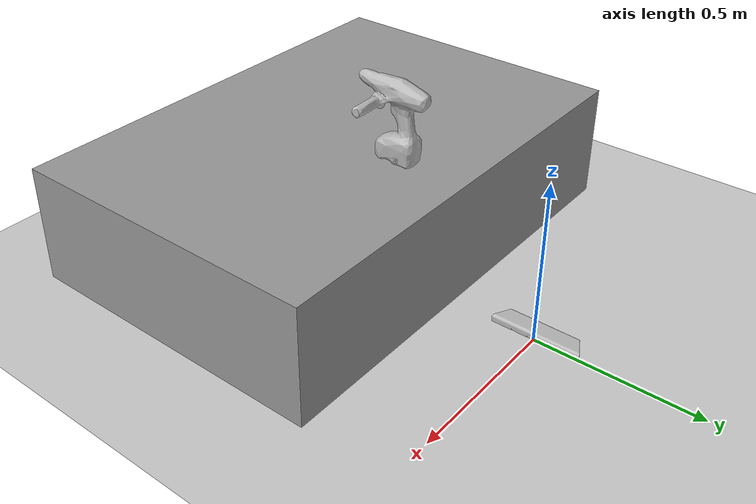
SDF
<sdf version="1.6">
 <world name="default">
  <include><uri>model://sun</uri></include>
  <model name="ground_plane">
   <static>1</static>
   <link name="link">
    <collision name="collision">
     <geometry><plane><normal>0 0 1</normal><size>100 100</size></plane></geometry>
     <surface>
      <contact><collide_bitmask>65535</collide_bitmask></contact>
      <friction><ode><mu>100</mu><mu2>50</mu2></ode></friction>
     </surface>
    </collision>
    <visual name="visual">
     <cast_shadows>0</cast_shadows>
     <geometry><plane><normal>0 0 1</normal><size>100 100</size></plane></geometry>
     <material>
      <script><uri>file://media/materials/scripts/gazebo.material</uri><name>Gazebo/Grey</name></script>
     </material>
    </visual>
   </link>
  </model>
  <gravity>0 0 -9.8</gravity>
  <magnetic_field>6e-06 2.3e-05 -4.2e-05</magnetic_field>
  <atmosphere type="adiabatic"/>
  <physics name="default_physics" default="0" type="ode">
   <max_step_size>0.001</max_step_size>
   <real_time_factor>1</real_time_factor>
   <real_time_update_rate>1000</real_time_update_rate>
  </physics>
  <scene><ambient>0.4 0.4 0.4 1</ambient><background>0.7 0.7 0.7 1</background><shadows>1</shadows></scene>
  <spherical_coordinates>
   <surface_model>EARTH_WGS84</surface_model>
   <latitude_deg>0</latitude_deg>
   <longitude_deg>0</longitude_deg>
   <elevation>0</elevation>
   <heading_deg>0</heading_deg>
  </spherical_coordinates>
  <model name="unit_box">
   <pose>-0.07703 -0.771719 0.186253 0 -0 1.57</pose>
   <link name="link">
    <inertial>
     <mass>1</mass>
     <inertia>
      <ixx>0.166667</ixx>
      <ixy>0</ixy>
      <ixz>0</ixz>
      <iyy>0.166667</iyy>
      <iyz>0</iyz>
      <izz>0.166667</izz>
     </inertia>
    </inertial>
    <collision name="collision"><geometry><box><size>1 1.45346 0.372506</size></box></geometry></collision>
    <visual name="visual">
     <geometry><box><size>1 1.45346 0.372506</size></box></geometry>
     <material>
      <script><name>Gazebo/Grey</name><uri>file://media/materials/scripts/gazebo.material</uri></script>
     </material>
    </visual>
   </link>
  </model>
  <model name="drill">
   <link name="link">
    <inertial>
     <pose>-0.00637 -0.008 0.13254 0 -0 0</pose>
     <inertia>
      <ixx>0.0133113</ixx>
      <ixy>-0.00030365</ixy>
      <ixz>-0.00034148</ixz>
      <iyy>0.0115766</iyy>
      <iyz>0.00088073</iyz>
      <izz>0.00378028</izz>
     </inertia>
     <mass>1.50252</mass>
    </inertial>
    <collision name="collision">
     <pose>0 0 -0.09 0 -0 0</pose>
     <geometry>
      <mesh><uri>model://cordless_drill/meshes/cordless_drill.stl</uri><scale>1 1 1</scale></mesh>
     </geometry>
     <surface><contact><ode><max_vel>0.1</max_vel><min_depth>0.001</min_depth></ode></contact></surface>
    </collision>
    <visual name="visual">
     <pose>0 0 -0.09 0 -0 0</pose>
     <geometry>
      <mesh><uri>model://cordless_drill/meshes/cordless_drill.dae</uri><scale>1 1 1</scale></mesh>
     </geometry>
    </visual>
   </link>
   <pose>-0.035457 -0.51154 0.370438 0 -0 3.13526</pose>
  </model>
  <model name="kinect">
   <static>1</static>
   <link name="link">
    <inertial>
     <mass>0.0</mass>
     <inertia><ixx>1</ixx><ixy>0</ixy><ixz>0</ixz><iyy>1</iyy><iyz>0</iyz><izz>1</izz></inertia>
    </inertial>
    <velocity_decay><linear>0</linear><angular>0</angular></velocity_decay>
    <visual name="visual">
     <geometry><mesh><uri>model://kinect/meshes/kinect.dae</uri><scale>1 1 1</scale></mesh></geometry>
    </visual>
    <collision name="collision"><geometry><box><size>0.073 0.276 0.072</size></box></geometry></collision>
    <sensor name="camera" type="depth">
     <update_rate>20</update_rate>
     <camera name="__default__">
      <horizontal_fov>1.0472</horizontal_fov>
      <image><width>640</width><height>480</height><format>R8G8B8</format></image>
      <clip><near>0.05</near><far>4</far></clip>
     </camera>
     <plugin name="kinect_camera_controller" filename="libgazebo_ros_openni_kinect.so">
      <cameraName>camera</cameraName>
      <alwaysOn>true</alwaysOn>
      <updateRate>10</updateRate>
      <imageTopicName>rgb/image_raw</imageTopicName>
      <depthImageTopicName>depth/image_raw</depthImageTopicName>
      <pointCloudTopicName>depth/points</pointCloudTopicName>
      <cameraInfoTopicName>rgb/camera_info</cameraInfoTopicName>
      <depthImageCameraInfoTopicName>depth/camera_info</depthImageCameraInfoTopicName>
      <frameName>/kinect__camera_depth_optical_frame</frameName>
      <baseline>0.1</baseline>
      <distortion_k1>0.0</distortion_k1>
      <distortion_k2>0.0</distortion_k2>
      <distortion_k3>0.0</distortion_k3>
      <distortion_t1>0.0</distortion_t1>
      <distortion_t2>0.0</distortion_t2>
      <pointCloudCutoff>0.4</pointCloudCutoff>
      <robotNamespace>/kinect</robotNamespace>
      <broadcastTF>false</broadcastTF>
     </plugin>
    </sensor>
   </link>
   <link name="camera_depth_optical_frame"><pose>-1.02348 -0.95 1.10681 -2.07 0 -1.57</pose></link>
  </model>
 </world>
</sdf>
